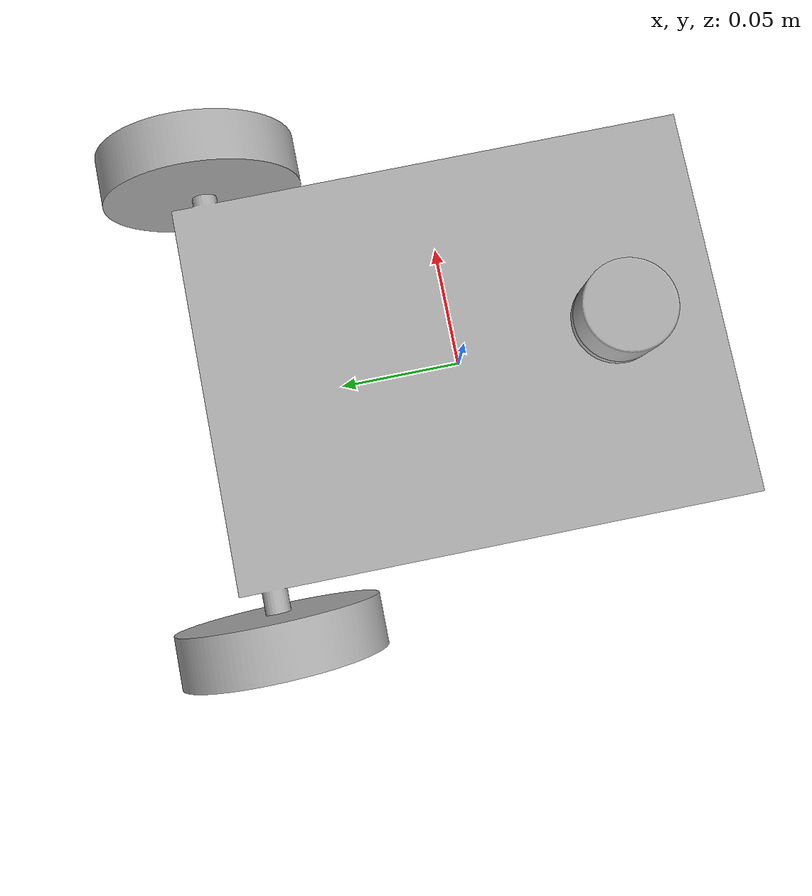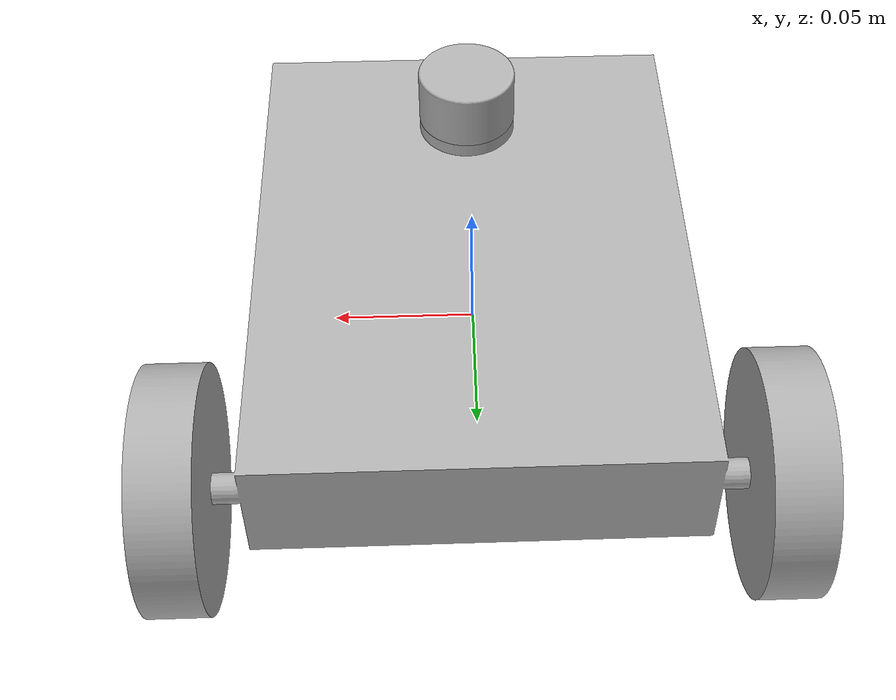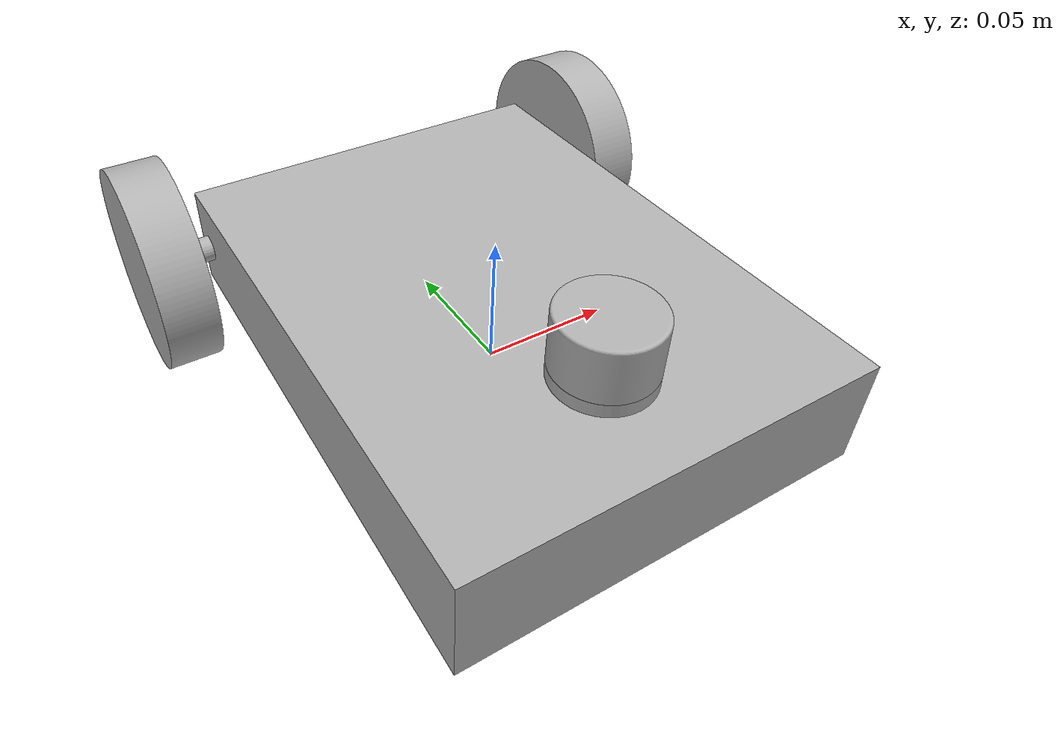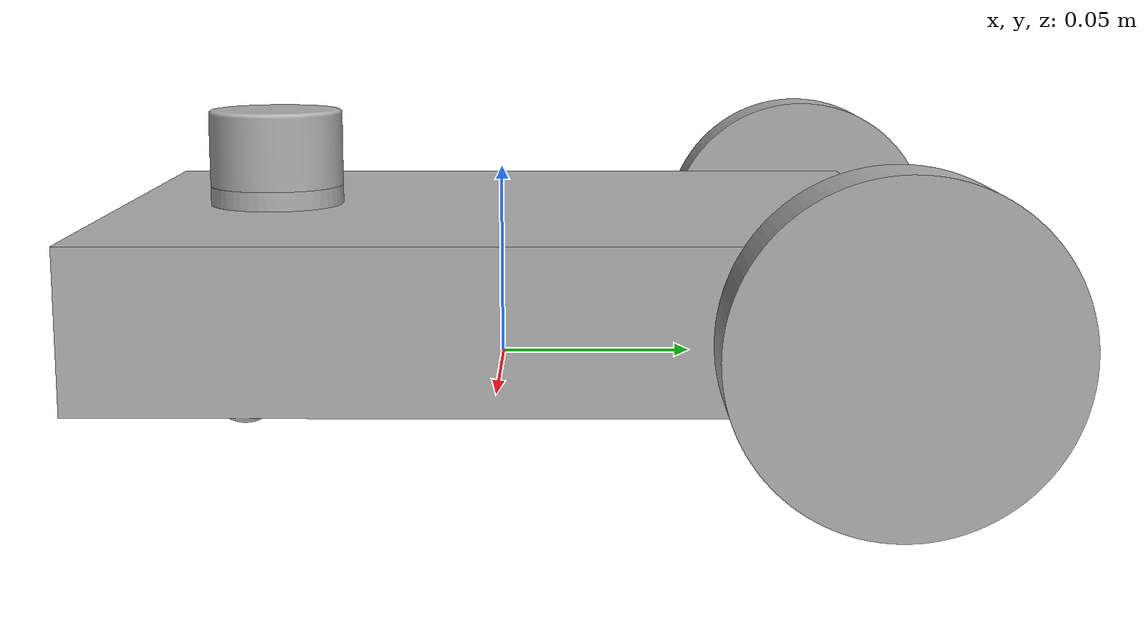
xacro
<?xml version="1.0" ?>
<robot name="agribot" xmlns:xacro="http://www.ros.org/wiki/xacro">

<xacro:include filename="$(find agribot_description)/urdf/materials.xacro" />
<xacro:include filename="$(find agribot_description)/gazebo/agribot_materials.gazebo" />
<xacro:include filename="$(find agribot_description)/gazebo/agribot_physics.gazebo" />
<xacro:include filename="$(find agribot_description)/gazebo/agribot_plugins.gazebo" />

<link name="base_link">
  <inertial>
    <origin xyz="9.261460023280907e-14 -0.0004240458420922852 0.019966170865145186" rpy="0 0 0"/>
    <mass value="9.511196180493643"/>
    <inertia ixx="0.033149" iyy="0.019055" izz="0.049585" ixy="0.0" iyz="-3.1e-05" ixz="0.0"/>
  </inertial>
  <visual>
    <origin xyz="0 0 0" rpy="0 0 0"/>
    <geometry>
      <mesh filename="package://agribot_description/meshes/base_link.stl" scale="0.001 0.001 0.001"/>
    </geometry>
    <material name="silver"/>
  </visual>
  <collision>
    <origin xyz="0 0 0" rpy="0 0 0"/>
    <geometry>
      <mesh filename="package://agribot_description/meshes/base_link.stl" scale="0.001 0.001 0.001"/>
    </geometry>
  </collision>
</link>

<link name="lidar_1">
  <inertial>
    <origin xyz="7.394185271433195e-18 6.938893903907228e-18 0.00998815108449349" rpy="0 0 0"/>
    <mass value="0.15086883195275047"/>
    <inertia ixx="1.7e-05" iyy="1.7e-05" izz="2.3e-05" ixy="0.0" iyz="-0.0" ixz="0.0"/>
  </inertial>
  <visual>
    <origin xyz="-0.0 0.06 -0.045" rpy="0 0 0"/>
    <geometry>
      <mesh filename="package://agribot_description/meshes/lidar_1.stl" scale="0.001 0.001 0.001"/>
    </geometry>
    <material name="silver"/>
  </visual>
  <collision>
    <origin xyz="-0.0 0.06 -0.045" rpy="0 0 0"/>
    <geometry>
      <mesh filename="package://agribot_description/meshes/lidar_1.stl" scale="0.001 0.001 0.001"/>
    </geometry>
  </collision>
</link>

<link name="left_wheel_1">
  <inertial>
    <origin xyz="-0.009999999999999995 0.0 0.0" rpy="0 0 0"/>
    <mass value="0.789168074581756"/>
    <inertia ixx="0.000631" iyy="0.000342" izz="0.000342" ixy="0.0" iyz="0.0" ixz="0.0"/>
  </inertial>
  <visual>
    <origin xyz="0.085 -0.09 -0.02" rpy="0 0 0"/>
    <geometry>
      <mesh filename="package://agribot_description/meshes/left_wheel_1.stl" scale="0.001 0.001 0.001"/>
    </geometry>
    <material name="silver"/>
  </visual>
  <collision>
    <origin xyz="0.085 -0.09 -0.02" rpy="0 0 0"/>
    <geometry>
      <mesh filename="package://agribot_description/meshes/left_wheel_1.stl" scale="0.001 0.001 0.001"/>
    </geometry>
  </collision>
</link>

<link name="right_wheel_1">
  <inertial>
    <origin xyz="0.009999999999999995 0.0 0.0" rpy="0 0 0"/>
    <mass value="0.789168074581756"/>
    <inertia ixx="0.000631" iyy="0.000342" izz="0.000342" ixy="0.0" iyz="0.0" ixz="0.0"/>
  </inertial>
  <visual>
    <origin xyz="-0.085 -0.09 -0.02" rpy="0 0 0"/>
    <geometry>
      <mesh filename="package://agribot_description/meshes/right_wheel_1.stl" scale="0.001 0.001 0.001"/>
    </geometry>
    <material name="silver"/>
  </visual>
  <collision>
    <origin xyz="-0.085 -0.09 -0.02" rpy="0 0 0"/>
    <geometry>
      <mesh filename="package://agribot_description/meshes/right_wheel_1.stl" scale="0.001 0.001 0.001"/>
    </geometry>
  </collision>
</link>

<joint name="Rigid_1" type="fixed">
  <origin xyz="0.0 -0.06 0.045" rpy="0 0 0"/>
  <parent link="base_link"/>
  <child link="lidar_1"/>
</joint>

<joint name="Revolute_2" type="continuous">
  <origin xyz="-0.085 0.09 0.02" rpy="0 0 0"/>
  <parent link="base_link"/>
  <child link="left_wheel_1"/>
  <axis xyz="-1.0 0.0 0.0"/>
</joint>

<joint name="Revolute_3" type="continuous">
  <origin xyz="0.085 0.09 0.02" rpy="0 0 0"/>
  <parent link="base_link"/>
  <child link="right_wheel_1"/>
  <axis xyz="1.0 0.0 0.0"/>
</joint>

</robot>

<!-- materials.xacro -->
<robot name="agribot" xmlns:xacro="http://www.ros.org/wiki/xacro" >

<material name="silver">
  <color rgba="0.700 0.700 0.700 1.000"/>
</material>

</robot>

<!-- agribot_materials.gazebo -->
<robot name="agribot" xmlns:xacro="http://www.ros.org/wiki/xacro" >

<xacro:property name="body_color" value="Gazebo/Red" />
<xacro:property name="gray_color" value="Gazebo/Grey" />
<xacro:property name="black_color" value="Gazebo/Black" />

<gazebo reference="base_link">
  <material>${body_color}</material>
</gazebo>

<gazebo reference="lidar_1">
  <material>${gray_color}</material>
</gazebo>

<gazebo reference="left_wheel_1">
  <material>${black_color}</material>
</gazebo>

<gazebo reference="right_wheel_1">
  <material>${black_color}</material>
</gazebo>

</robot>
